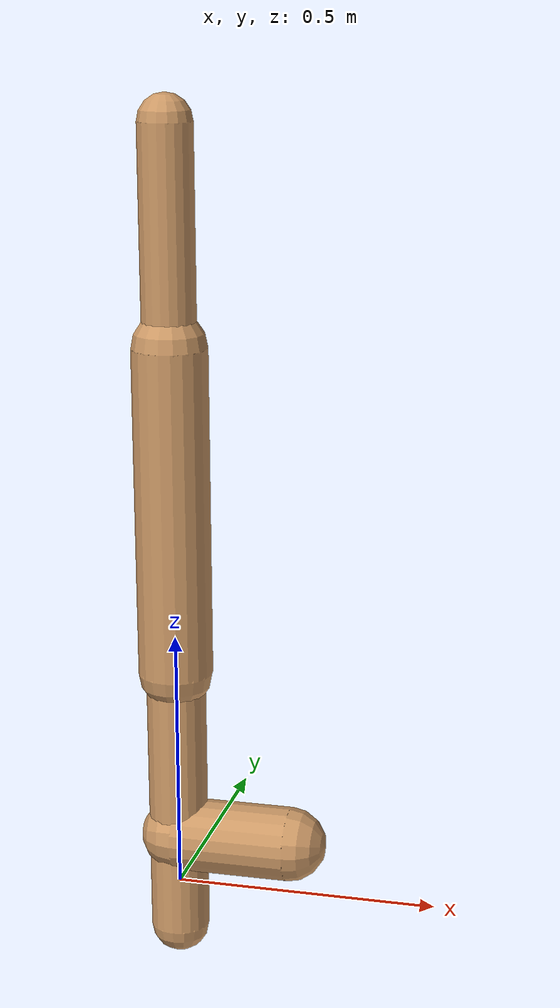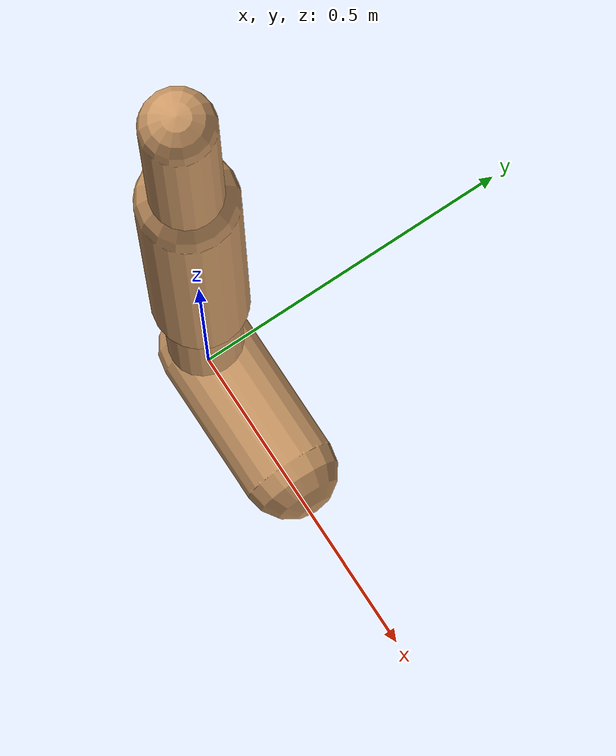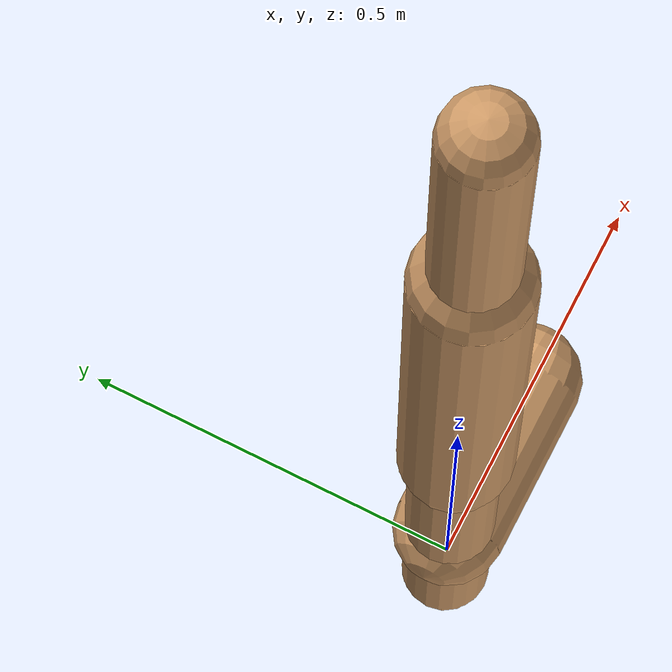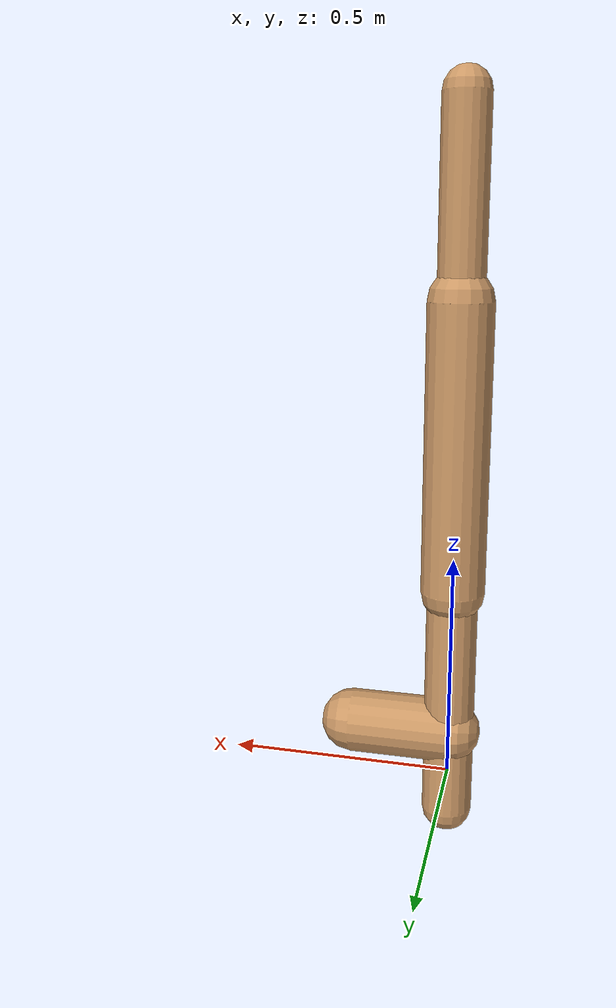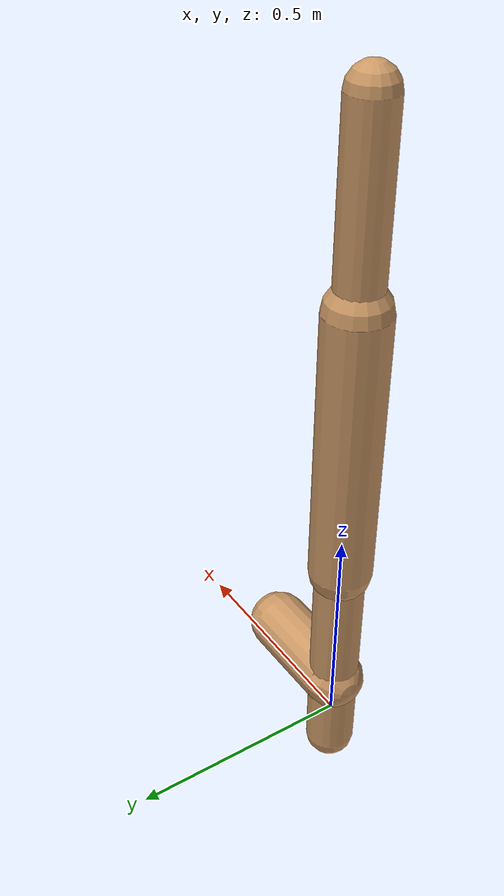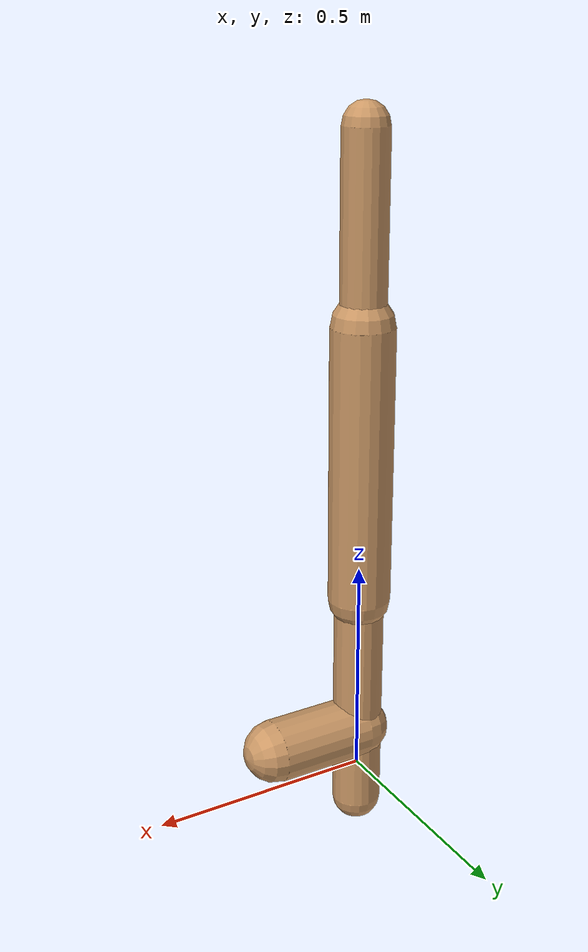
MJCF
<mujoco model="walker2d">
  <compiler angle="degree" coordinate="global" inertiafromgeom="true" />
  <default>
    <joint armature="0.01" damping=".1" limited="true" />
    <geom conaffinity="0" condim="3" contype="1" density="1000" friction="0.8 .1 .1" rgba="0.8 0.6 .4 1" />
  </default>
  <option integrator="RK4" timestep="0.002" />
  <worldbody>

    <body name="torso" pos="0 0 0.3576276806578383">
      <joint armature="0" axis="1 0 0" damping="0" limited="false" name="ignorex" pos="0 0 0" stiffness="0" type="slide" />
      <joint armature="0" axis="0 0 1" damping="0" limited="false" name="ignorez" pos="0 0 0" ref="1.25" stiffness="0" type="slide" />
      <joint armature="0" axis="0 1 0" damping="0" limited="false" name="ignorey" pos="0 0 0" stiffness="0" type="hinge" />
      <geom fromto="0 0 1.45 0 0 1.05" name="torso_geom" size="0.04999052425694578" type="capsule" />
      <body name="thigh">
        <joint axis="0 -1 0" name="thigh_joint" pos="0 0 1.05" range="-150 0" type="hinge" />
        <geom fromto="0.0 0.0 1.05 0.0 0.0 0.43059741442523447" name="thigh_geom" size="0.06983185213939017" type="capsule" />
        <body name="leg" pos="0.0 0.0 -0.1694025855747655">
          <joint axis="0 -1 0" name="leg_joint" pos="0 0 0.6" range="-150 0" type="hinge" />
          <geom fromto="0.0 0.0 0.6 0.0 0.0 -0.08822509508307277" name="leg_geom" size="0.05586548171151213" type="capsule" />
          <body name="foot" pos="0.0 0.0 -0.18822509508307278">
            <joint axis="0 -1 0" name="foot_joint" pos="0 0 0.1" range="-45 45" type="hinge" />
            <geom fromto="-0.0 0.0 0.1 0.21905341640110462 0.0 0.1" name="foot_geom" size="0.07072206691806747" type="capsule" />
          </body>
        </body>
      </body>

      <body name="thigh_left">
        <joint axis="0 -1 0" name="thigh_left_joint" pos="0 0 1.05" range="-150 0" type="hinge" />
        <geom fromto="0.0 0.0 1.05 0.0 0.0 0.43059741442523447" name="thigh_left_geom" rgba=".7 .3 .6 1" size="0.06983185213939017" type="capsule" />
        <body name="leg_left" pos="0.0 0.0 -0.1694025855747655">
          <joint axis="0 -1 0" name="leg_left_joint" pos="0 0 0.6" range="-150 0" type="hinge" />
          <geom fromto="0.0 0.0 0.6 0.0 0.0 -0.08822509508307277" name="leg_left_geom" rgba=".7 .3 .6 1" size="0.05586548171151213" type="capsule" />
          <body name="foot_left" pos="0.0 0.0 -0.18822509508307278">
            <joint axis="0 -1 0" name="foot_left_joint" pos="0 0 0.1" range="-45 45" type="hinge" />
            <geom fromto="-0.0 0.0 0.1 0.21905341640110462 0.0 0.1" name="foot_left_geom" rgba=".7 .3 .6 1" size="0.07072206691806747" type="capsule" />
          </body>
        </body>
      </body>
    </body>
  </worldbody>
  <actuator>

    <motor ctrllimited="true" ctrlrange="-1.0 1.0" gear="100" joint="thigh_joint" />
    <motor ctrllimited="true" ctrlrange="-1.0 1.0" gear="100" joint="leg_joint" />
    <motor ctrllimited="true" ctrlrange="-1.0 1.0" gear="100" joint="foot_joint" />
    <motor ctrllimited="true" ctrlrange="-1.0 1.0" gear="100" joint="thigh_left_joint" />
    <motor ctrllimited="true" ctrlrange="-1.0 1.0" gear="100" joint="leg_left_joint" />
    <motor ctrllimited="true" ctrlrange="-1.0 1.0" gear="100" joint="foot_left_joint" />

  </actuator>
</mujoco>
